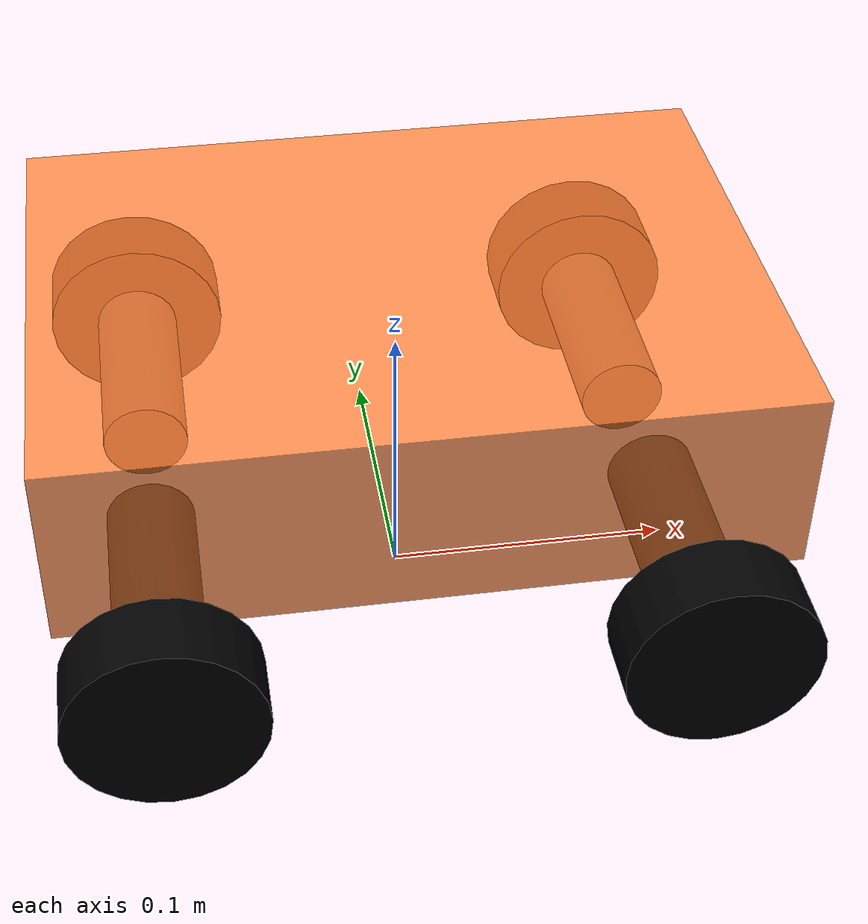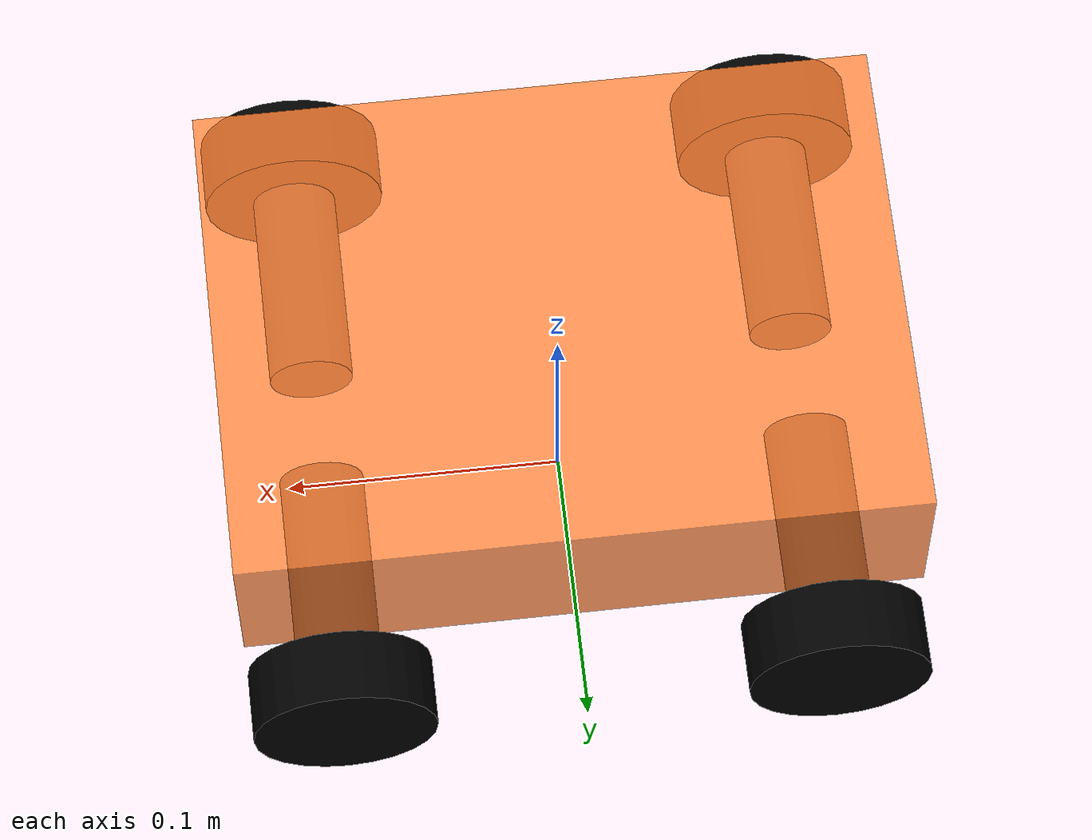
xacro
<?xml version="1.0"?>
<robot name="my_car" xmlns:xacro="http://wiki.ros.org/xacro">

    <!-- 1. footprint 小球半径 -->
    <xacro:property name="footprint_radius" value="0.001" />

    <!-- 2. 主体参数（你给的） -->
    <!-- 主体：长0.24m，宽0.175m，高0.065m -->
    <xacro:property name="base_l" value="0.24" />
    <xacro:property name="base_w" value="0.175" />
    <xacro:property name="base_h" value="0.065" />

    <!-- 3.一些常量 -->
    <xacro:property name="PI" value="3.1415926" />

    <!-- (1)主体中心相对地面的高度-->
    <!-- 底部到地面 = 轮子直径
         主体中心 = 轮子直径 + 主体高度/2
    -->
    <xacro:property name="base_center_z" value="${wheel_radius*2 + base_h/2}" />

    <!-- (2)轮子参数 -->
    <!-- 半径 0.065m；宽0.025m -->
    <xacro:property name="wheel_radius" value="0.0325" />
    <xacro:property name="wheel_width"  value="0.025" />

    <!-- 轮子在 y 方向（前后）的偏移：
         就是贴着电机即可，要带上一个轮胎宽度
    -->
    <xacro:property name="wheel_y_offset" value="${wheel_width/2}" />

    <!-- (3)电机尺寸。长度是带轴了的-->
    <xacro:property name="motor_radius" value="0.015" />
    <xacro:property name="motor_length" value="0.0725" />

    <!-- 电机中心距离 base_link x方向偏移
         base_l/2 - 轮子半径
    -->
    <xacro:property name="motor_x_offset" value="${base_l/2 - wheel_radius}" />
    <!-- 电机中心相对 base_link 的 y 偏移：
         这里简单取在主体侧面附近：base_w/2 - 电机（带轴）长/2 + 实际主体和轮子间距离0.005
         轮子会比电机再往外 2.5mm
    -->
    <xacro:property name="motor_y_offset" value="${base_w/2 - motor_length/2  + 0.005}" />

    <!-- 电机中心距离 base_link 的 z 偏移
         base_h/2 + 电机半径
    -->
    <xacro:property name="motor_z_offset" value="${-(base_h/2 + motor_radius)}" />
    <!-- =========================
         1. base_footprint
       ========================= -->
    <link name="base_footprint">
        <visual>
            <geometry>
                <sphere radius="${footprint_radius}" />
            </geometry>
            <origin xyz="0 0 0" rpy="0 0 0" />
            <material name="footprint_color">
                <color rgba="0 0 1 0.5" />
            </material>
        </visual>
    </link>

    <!-- =========================
         2. 主体 base_link
       ========================= -->
    <link name="base_link">
        <visual>
            <geometry>
                <!-- 主体用 box 表示 -->
                <box size="${base_l} ${base_w} ${base_h}" />
            </geometry>
            <origin xyz="0 0 0" rpy="0 0 0" />
            <material name="base_color">
                <color rgba="1.0 0.5 0.2 0.8" />
            </material>
        </visual>

        <collision>
            <geometry>
                <box size="${base_l} ${base_w} ${base_h}" />
            </geometry>
            <origin xyz="0 0 0" rpy="0 0 0" />
        </collision>
    </link>

    <!-- base_footprint -> base_link （固定） -->
    <joint name="base_footprint_to_base_link" type="fixed">
        <parent link="base_footprint" />
        <child  link="base_link" />
        <!-- base_link 中心在 z = base_center_z -->
        <origin xyz="0 0 ${base_center_z}" rpy="0 0 0" />
    </joint>

    <!-- =========================
         3. 电机 + 轮子 宏封装 (结构B)
       ========================= -->
    <!--
        name : 轮组名称前缀（front_left, front_right 等）
        xs   : x 方向符号（前 +1，后 -1）
        ys   : y 方向符号（左 +1，右 -1）
    -->
    <xacro:macro name="motor_wheel_unit" params="name xs ys zs">

        <!-- 3-1. 电机 link -->
        <link name="${name}_motor">
            <visual>
                <geometry>
                    <!-- 电机用小长方体表示 -->
                    <cylinder radius="${motor_radius}" length="${motor_length}" />
                </geometry>
                <origin xyz="0 0 0" rpy="${PI/2} 0 0" />
                <material name="motor_color">
                    <color rgba="0.2 0.2 0.2 1.0" />
                </material>
            </visual>

            <collision>
                <geometry>
                    <cylinder radius="${motor_radius}" length="${motor_length}" />
                </geometry>
                <origin xyz="0 0 0" rpy="${PI/2} 0 0" />
            </collision>
        </link>

        <!-- base_link -> 电机 (固定关节)，电机紧贴主体侧面 -->
        <joint name="${name}_motor_joint" type="fixed">
            <parent link="base_link" />
            <child  link="${name}_motor" />
            <!--
                x: 前后偏移 ±motor_x_offset（和轮子差不多位置）
                y: 左右偏移 ±motor_y_offset（在主体侧面）
                z: motor_z_offset
            -->
            <origin xyz="${motor_x_offset * xs} ${motor_y_offset * ys} ${motor_z_offset * zs}" rpy="0 0 0" />
        </joint>

        <!-- 3-2. 轮子 link -->
        <link name="${name}_wheel">
            <visual>
                <geometry>
                    <cylinder radius="${wheel_radius}" length="${wheel_width}" />
                </geometry>
                <!-- 轮子转轴沿 y 轴，圆柱默认沿 z 轴，绕 x 轴旋转 90° -->
                <origin xyz="0 0 0" rpy="${PI/2} 0 0" />
                <material name="wheel_color">
                    <color rgba="0 0 0 1.0" />
                </material>
            </visual>

            <collision>
                <geometry>
                    <cylinder radius="${wheel_radius}" length="${wheel_width}" />
                </geometry>
                <origin xyz="0 0 0" rpy="${PI/2} 0 0" />
            </collision>
        </link>

        <!-- 电机 -> 轮子 (连续关节) -->
        <joint name="${name}_wheel_joint" type="continuous">
            <parent link="${name}_motor" />
            <child  link="${name}_wheel" />
            <origin xyz="0 ${(wheel_y_offset + motor_length/2) * ys} 0" rpy="0 0 0" />
            <!-- 绕 y 轴转动 -->
            <axis xyz="0 1 0" />
        </joint>

    </xacro:macro>

    <!-- =========================
         4. 四个电机+轮子实例
       ========================= -->
    <!-- ROS 坐标：x 向前，y 向左，z 向上 -->
    <!-- 前左：x+, y+ -->
    <xacro:motor_wheel_unit name="front_left"  xs="1"  ys="1" zs="1" />
    <!-- 前右：x+, y- -->
    <xacro:motor_wheel_unit name="front_right" xs="1"  ys="-1" zs="1" />
    <!-- 后左：x-, y+ -->
    <xacro:motor_wheel_unit name="rear_left"   xs="-1" ys="1" zs="1" />
    <!-- 后右：x-, y- -->
    <xacro:motor_wheel_unit name="rear_right"  xs="-1" ys="-1" zs="1" />

</robot>
